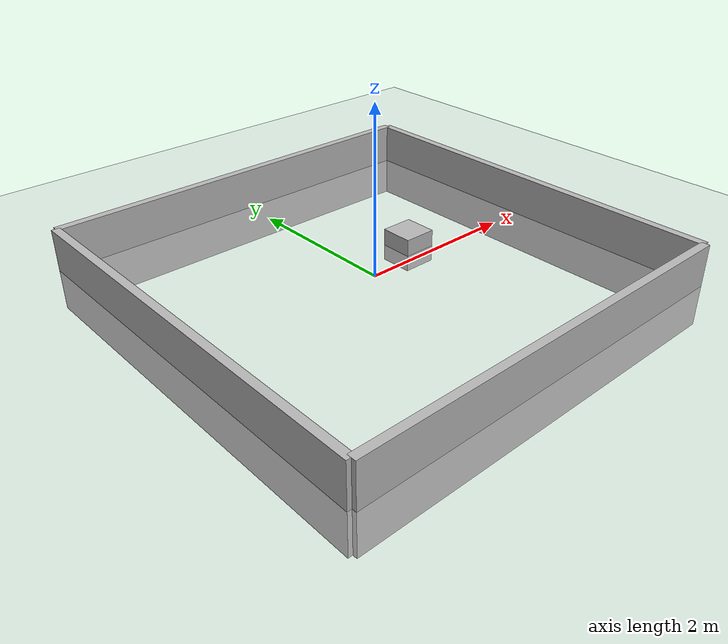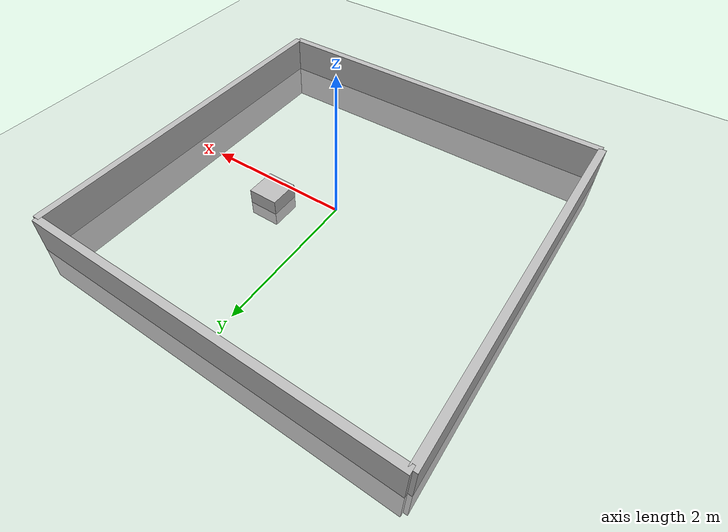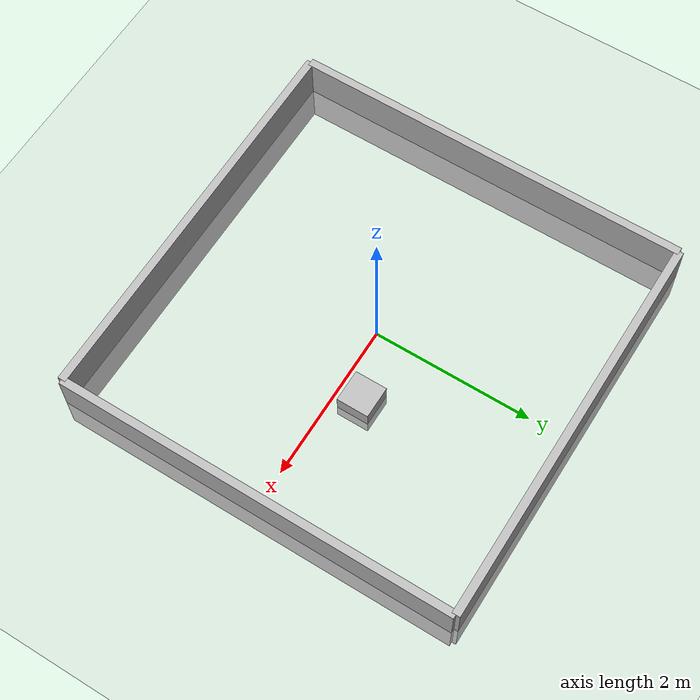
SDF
<?xml version="1.0"?>
<sdf version="1.7">
  <world name="easy1">

    <!-- Ground plane -->
    <include>
      <uri>model://ground_plane</uri>
    </include>

    <!-- Sun light -->
    <include>
      <uri>model://sun</uri>
    </include>

    <!-- Simple 5m × 5m room boundary -->
    <model name="room_walls">
      <static>true</static>

      <!-- Wall 1 -->
      <link name="wall1">
        <pose>0 2.5 0 0 0 0</pose>
        <collision name="collision">
          <geometry><box><size>5 0.1 1</size></box></geometry>
        </collision>
        <visual name="visual">
          <geometry><box><size>5 0.1 1</size></box></geometry>
        </visual>
      </link>

      <!-- Wall 2 -->
      <link name="wall2">
        <pose>0 -2.5 0 0 0 0</pose>
        <collision name="collision">
          <geometry><box><size>5 0.1 1</size></box></geometry>
        </collision>
        <visual name="visual">
          <geometry><box><size>5 0.1 1</size></box></geometry>
        </visual>
      </link>

      <!-- Wall 3 -->
      <link name="wall3">
        <pose>2.5 0 0 0 0 1.5708</pose>
        <collision name="collision">
          <geometry><box><size>5 0.1 1</size></box></geometry>
        </collision>
        <visual name="visual">
          <geometry><box><size>5 0.1 1</size></box></geometry>
        </visual>
      </link>

      <!-- Wall 4 -->
      <link name="wall4">
        <pose>-2.5 0 0 0 0 1.5708</pose>
        <collision name="collision">
          <geometry><box><size>5 0.1 1</size></box></geometry>
        </collision>
        <visual name="visual">
          <geometry><box><size>5 0.1 1</size></box></geometry>
        </visual>
      </link>
    </model>

    <!-- One obstacle -->
    <model name="obstacle_box">
      <pose>0.8 0.3 0 0 0 0</pose>
      <static>true</static>
      <link name="link">
        <collision name="collision">
          <geometry><box><size>0.4 0.4 0.4</size></box></geometry>
        </collision>
        <visual name="visual">
          <geometry><box><size>0.4 0.4 0.4</size></box></geometry>
        </visual>
      </link>
    </model>

  </world>
</sdf>
